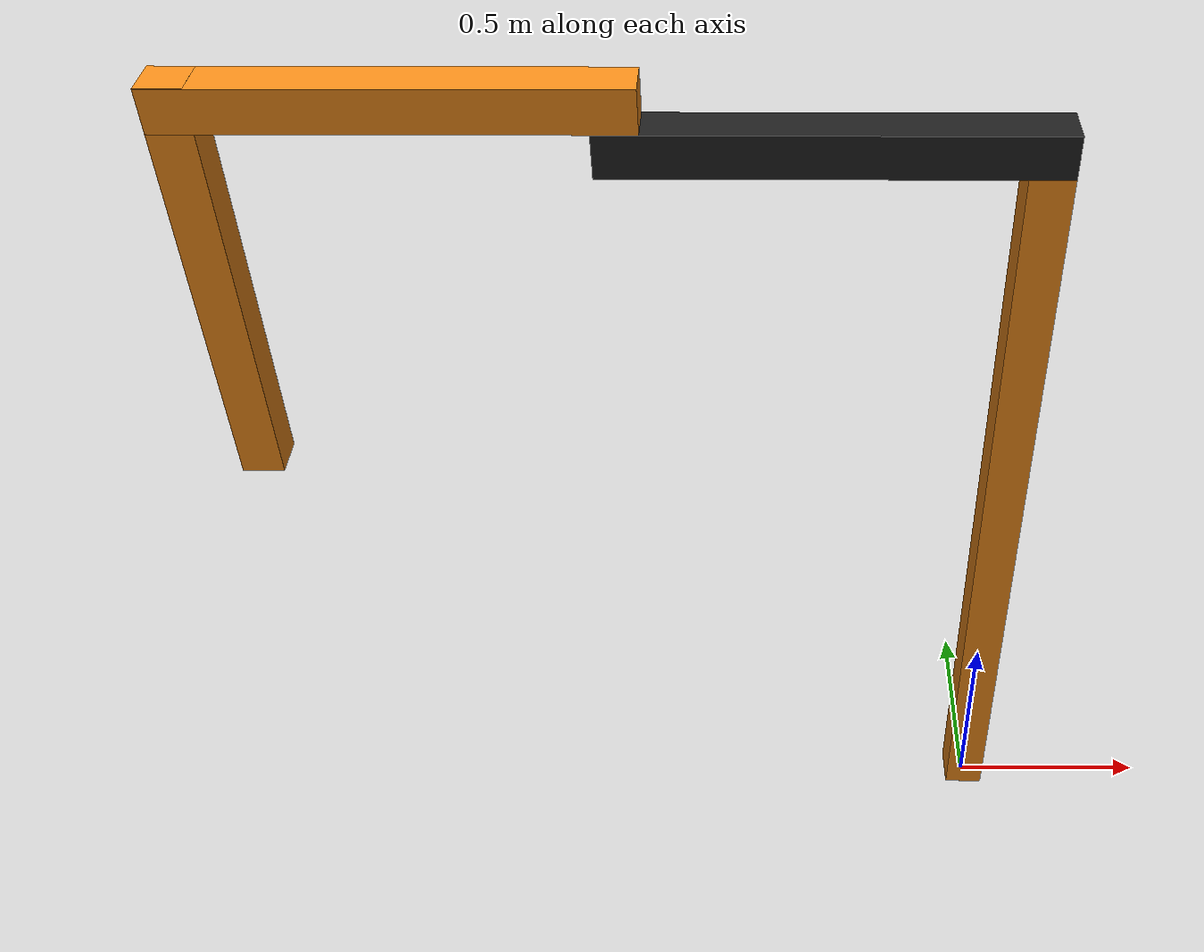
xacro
<?xml version="1.0"?>
<!-- Revolute-Revolute Manipulator -->
<robot name="rrbot" xmlns:xacro="http://www.ros.org/wiki/xacro">

  <!-- Constants for robot dimensions -->
  <xacro:property name="PI" value="3.1415926535897931"/>
  <xacro:property name="mass" value="1" /> <!-- arbitrary value for mass -->
  <xacro:property name="width" value="0.1" /> <!-- Square dimensions (widthxwidth) of beams -->
  <xacro:property name="height1" value="2" /> <!-- Link 1 -->
  <xacro:property name="height2" value="1" /> <!-- Link 2 -->
  <xacro:property name="height3" value="1" /> <!-- Link 3 -->
  <xacro:property name="height4" value="1" /> <!-- Link 4 -->
  <xacro:property name="camera_link" value="0.05" /> <!-- Size of square 'camera' box -->
  <xacro:property name="axel_offset" value="0.05" /> <!-- Space btw top of beam and the each joint -->

  <!-- Import all Gazebo-customization elements, including Gazebo colors -->
  <xacro:include filename="$(find rrbot_description)/urdf/rrbot.gazebo" />
  <!-- Import Rviz colors -->
  <xacro:include filename="$(find rrbot_description)/urdf/materials.xacro" />

  <!-- Used for fixing robot to Gazebo 'base_link' -->
  <link name="world"/>

  <joint name="fixed" type="fixed">
    <parent link="world"/>
    <child link="link1"/>
  </joint>

  <!-- Base Link -->
  <link name="link1">
    <collision>
      <origin xyz="0 0 ${height1/2}" rpy="0 0 0"/>
      <geometry>
	<box size="${width} ${width} ${height1}"/>
      </geometry>
    </collision>

    <visual>
      <origin xyz="0 0 ${height1/2}" rpy="0 0 0"/>
      <geometry>
	<box size="${width} ${width} ${height1}"/>
      </geometry>
      <material name="orange"/>
    </visual>

    <inertial>
      <origin xyz="0 0 0" rpy="0 0 0"/>
      <mass value="${mass}"/>
      <inertia
	  ixx="${mass / 12.0 * (width*width + height1*height1)}" ixy="0.0" ixz="0.0"
	  iyy="${mass / 12.0 * (height1*height1 + width*width)}" iyz="0.0"
	  izz="${mass / 12.0 * (width*width + width*width)}"/>
    </inertial>
  </link>

  <joint name="joint1" type="revolute">
    <parent link="link1"/>
    <child link="link2"/>
    <origin xyz="0 0 ${height1}" rpy="0 0 0"/>
    <axis xyz="0 0 1"/>
    <limit lower="-3.141" upper="3.141" effort="100" velocity="0.1"/>
    <dynamics damping="0.7"/>
  </joint>

  <!-- Middle Link -->
  <link name="link2">
    <collision>
      <origin xyz="${-height2/2 + axel_offset} 0 ${axel_offset}" rpy="0 1.57 0"/>
      <geometry>
	<box size="${width} ${width} ${height2}"/>
      </geometry>
    </collision>

    <visual>
      <origin xyz="${-height2/2 + axel_offset} 0 ${axel_offset}" rpy="0 1.57 0"/>
      <geometry>
	<box size="${width} ${width} ${height2}"/>
      </geometry>
      <material name="black"/>
    </visual>

    <inertial>
      <origin xyz="0 0 0" rpy="0 0 0"/>
      <mass value="${mass}"/>
      <inertia
	  ixx="${mass / 12.0 * (width*width + height2*height2)}" ixy="0.0" ixz="0.0"
	  iyy="${mass / 12.0 * (height2*height2 + width*width)}" iyz="0.0"
	  izz="${mass / 12.0 * (width*width + width*width)}"/>
    </inertial>
  </link>

  <joint name="joint2" type="revolute">
    <parent link="link2"/>
    <child link="link3"/>
    <origin xyz="${-height2 + 2*axel_offset} 0 ${2*axel_offset}" rpy="0 0 0"/>
    <axis xyz="0 0 1"/>
    <dynamics damping="0.7"/>
    <limit lower="-2.355" upper="2.355" effort="100" velocity="0.1"/>
  </joint>

  <!-- Top Link -->
  <link name="link3">
    <collision>
      <origin xyz="${-height3/2 + axel_offset} 0 ${axel_offset}" rpy="0 1.57 0"/>
      <geometry>
	<box size="${width} ${width} ${height3}"/>
      </geometry>
    </collision>

    <visual>
      <origin xyz="${-height3/2 + axel_offset} 0 ${axel_offset}" rpy="0 1.57 0"/>
      <geometry>
	<box size="${width} ${width} ${height3}"/>
      </geometry>
      <material name="orange"/>
    </visual>

    <inertial>
      <origin xyz="0 0 0" rpy="0 0 0"/>
      <mass value="${mass}"/>
      <inertia
	  ixx="${mass / 12.0 * (width*width + height3*height3)}" ixy="0.0" ixz="0.0"
	  iyy="${mass / 12.0 * (height3*height3 + width*width)}" iyz="0.0"
	  izz="${mass / 12.0 * (width*width + width*width)}"/>
    </inertial>
  </link>

  <!-- My code starts -->

  <joint name="joint3" type="prismatic">
    <parent link="link3"/>
    <child link="link4"/>
    <origin xyz="${-height3 + 2*axel_offset} 0 ${2*axel_offset}" rpy="0 0 0"/>
    <axis xyz="0 0 1"/>
    <dynamics damping="0.7"/>
    <limit lower="0.0" upper="0.9" effort="100.0" velocity="0.1"/>
  </joint>

  <!-- Top Link -->
  <link name="link4">
    <collision>
      <origin xyz="0 0 ${-height4/2}" rpy="0 0 0"/>
      <geometry>
	<box size="${width} ${width} ${height4}"/>
      </geometry>
    </collision>

    <visual>
      <origin xyz="0 0 ${-height4/2}" rpy="0 0 0"/>
      <geometry>
	<box size="${width} ${width} ${height4}"/>
      </geometry>
      <material name="orange"/>
    </visual>

    <inertial>
      <origin xyz="0 0 0" rpy="0 0 0"/>
      <mass value="${mass}"/>
      <inertia
	  ixx="${mass / 12.0 * (width*width + height4*height4)}" ixy="0.0" ixz="0.0"
	  iyy="${mass / 12.0 * (height4*height4 + width*width)}" iyz="0.0"
	  izz="${mass / 12.0 * (width*width + width*width)}"/>
    </inertial>
  </link>

  <!-- My code ends -->

  <transmission name="tran1">
    <type>transmission_interface/SimpleTransmission</type>
    <joint name="joint1">
      <hardwareInterface>hardware_interface/EffortJointInterface</hardwareInterface>
    </joint>
    <actuator name="motor1">
      <hardwareInterface>hardware_interface/EffortJointInterface</hardwareInterface>
      <mechanicalReduction>1</mechanicalReduction>
    </actuator>
  </transmission>

  <transmission name="tran2">
    <type>transmission_interface/SimpleTransmission</type>
    <joint name="joint2">
      <hardwareInterface>hardware_interface/EffortJointInterface</hardwareInterface>
    </joint>
    <actuator name="motor2">
      <hardwareInterface>hardware_interface/EffortJointInterface</hardwareInterface>
      <mechanicalReduction>1</mechanicalReduction>
    </actuator>
  </transmission>

  <transmission name="tran3">
    <type>transmission_interface/SimpleTransmission</type>
    <joint name="joint3">
      <hardwareInterface>hardware_interface/EffortJointInterface</hardwareInterface>
    </joint>
    <actuator name="motor3">
      <hardwareInterface>hardware_interface/EffortJointInterface</hardwareInterface>
      <mechanicalReduction>1</mechanicalReduction>
    </actuator>
  </transmission>

</robot>
